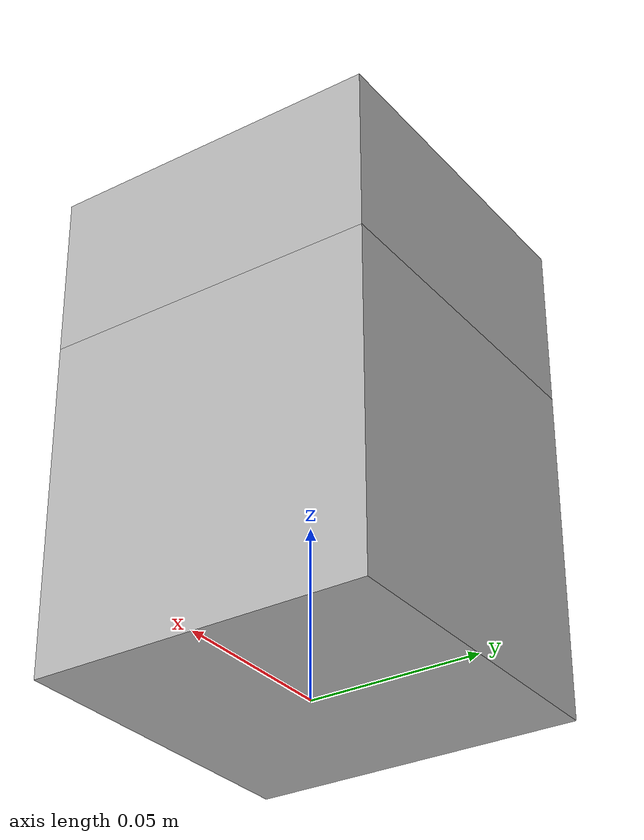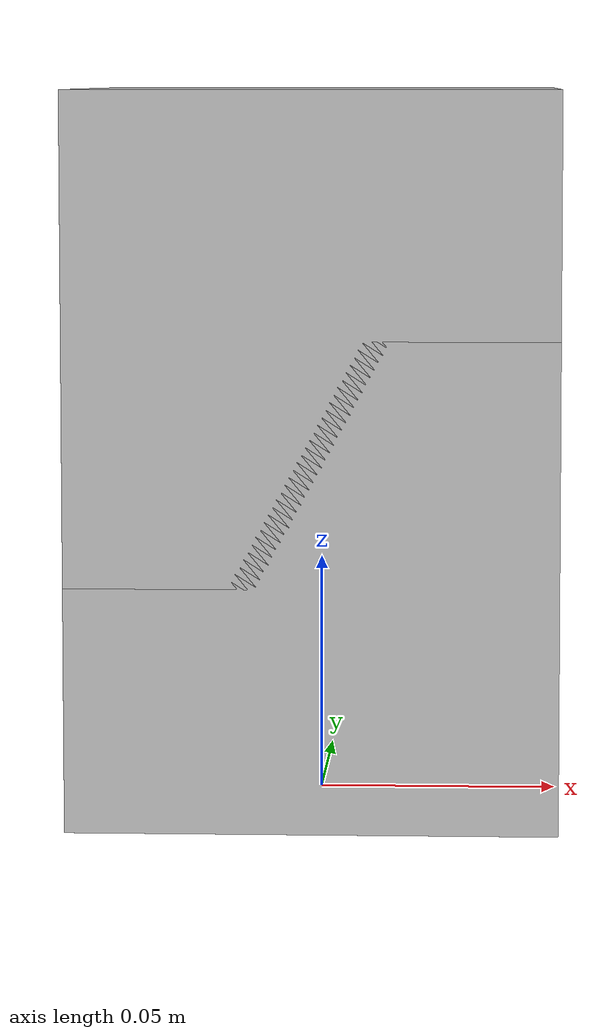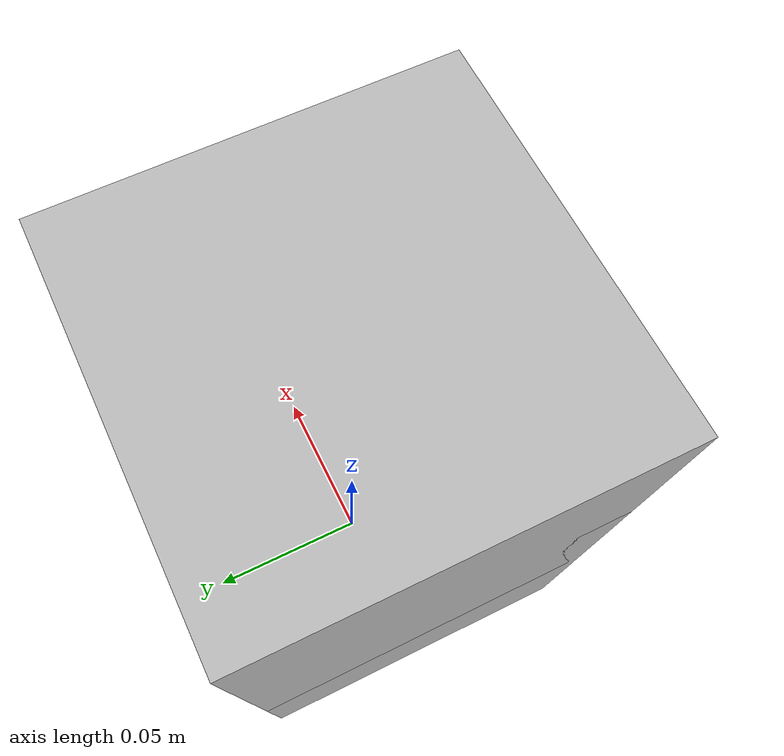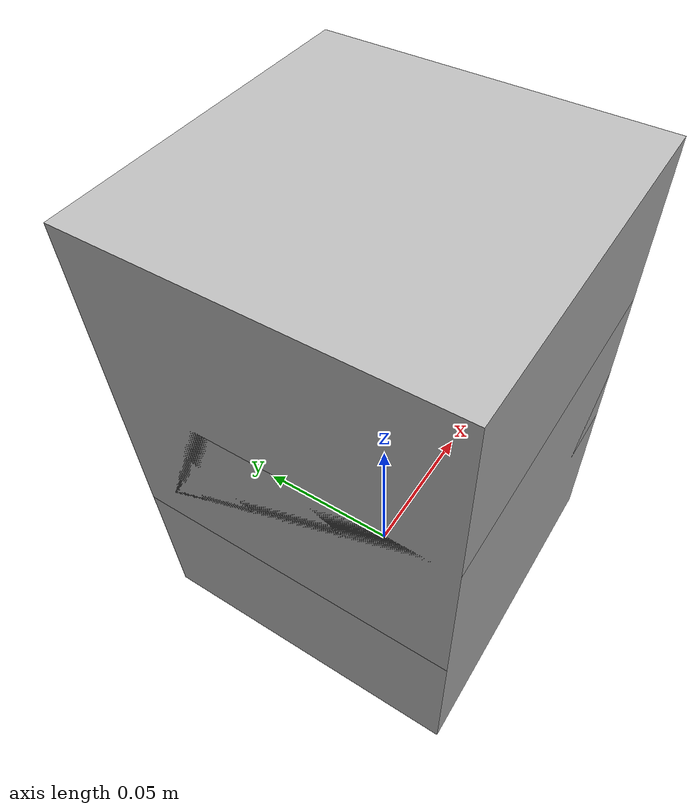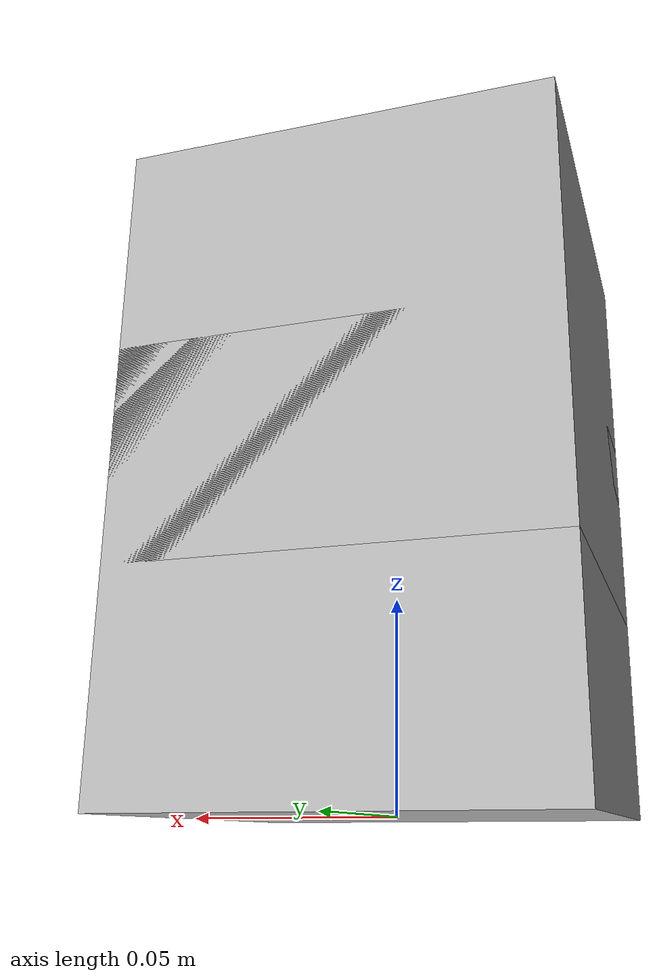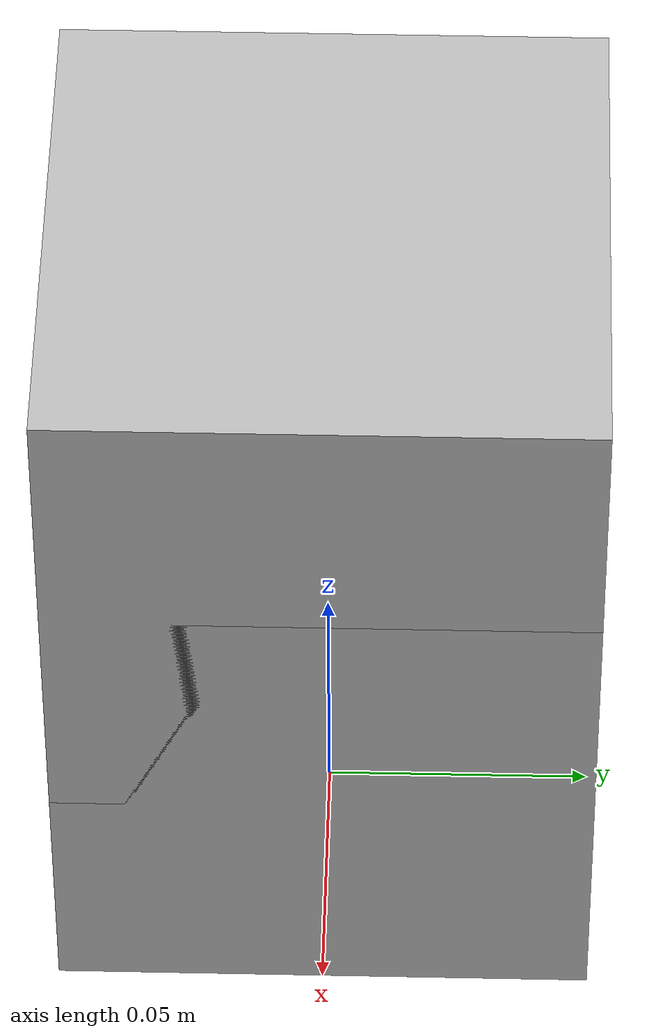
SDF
<?xml version='1.0'?>
<sdf version='1.6'>
		<model name="testflexible">
			<self_collide>true</self_collide>
			<pose>0.0 0.0 0.0 0.0 0.0 0.0</pose>
			<!-- Start of parts of the pmodel testflexible -->
				<!-- Start of declarations for part "testflexible::TESTLINK" -->
					<!-- Start of parts of part "testflexible::TESTLINK" -->
					<!-- End of parts of part "testflexible::TESTLINK" -->

					<!-- Start of links of part "testflexible::TESTLINK" -->
					<!-- link full name is testflexible::TESTLINK::L2 -->
					<link name="1-L2">
							<pose>0.0 0.0 0.10000000149011612 0.0 0.0 0.0</pose>
							<inertial>
								<pose>0.0 0.0 0.0 0.0 0.0 0.0</pose>
								<inertia>
									<ixx>1.0</ixx>
									<ixy>0.0</ixy>
									<ixz>0.0</ixz>
									<iyy>1.0</iyy>
									<iyz>0.0</iyz>
									<izz>1.0</izz>
								</inertia>
								<mass>1.0</mass>
							</inertial>
							<!-- body full name is testflexible::TESTLINK::L2::B2 -->
							<collision name="1--B2">
								<laser_retro>0.0</laser_retro>
								<pose>0.0 0.0 0.0 0.0 0.0 0.0</pose>
								<geometry>
									<box>
										<size>0.10000000149011612 0.10000000149011612 0.10000000149011612</size>
									</box>
								</geometry>
								<surface>
									<bounce>
										<restitution_coefficient>0.0</restitution_coefficient>
										<threshold>100000.0</threshold>
									</bounce>
									<friction>
										<ode>
											<mu>1.0</mu>
											<mu2>1.0</mu2>
											<fdir1>0.0 0.0 0.0</fdir1>
											<slip1>0.0</slip1>
											<slip2>0.0</slip2>
										</ode>
										<torsional>
											<coefficient>1.0</coefficient>
											<surface_radius>0.0</surface_radius>
										</torsional>
									</friction>
								</surface>
							</collision>
							<visual name="1--B2">
								<laser_retro>0.0</laser_retro>
								<pose>0.0 0.0 0.0 0.0 0.0 0.0</pose>
								<geometry>
									<box>
										<size>0.10000000149011612 0.10000000149011612 0.10000000149011612</size>
									</box>
								</geometry>
								<surface>
									<bounce>
										<restitution_coefficient>0.0</restitution_coefficient>
										<threshold>100000.0</threshold>
									</bounce>
									<friction>
										<ode>
											<mu>1.0</mu>
											<mu2>1.0</mu2>
											<fdir1>0.0 0.0 0.0</fdir1>
											<slip1>0.0</slip1>
											<slip2>0.0</slip2>
										</ode>
										<torsional>
											<coefficient>1.0</coefficient>
											<surface_radius>0.0</surface_radius>
										</torsional>
									</friction>
								</surface>
							</visual>
					</link>
					<!-- End of links of part "testflexible::TESTLINK" -->

					<!-- Start of joints of part "testflexible::TESTLINK" -->
					<!-- End of joints of part "testflexible::TESTLINK" -->

					<!-- Start of fixed connections of part "testflexible::TESTLINK" -->

					<!-- End of fixed connections of part "testflexible::TESTLINK" -->
				<!-- End of declarations for part "testflexible::TESTLINK" -->
			<!-- End of parts of the pmodel testflexible -->

			<!-- Start of links of the pmodel testflexible -->
			<!-- link full name is testflexible::L1 -->
			<link name="2-L1">
					<pose>0.0 0.0 0.05000000074505806 0.0 0.0 0.0</pose>
					<inertial>
						<pose>0.0 0.0 0.0 0.0 0.0 0.0</pose>
						<inertia>
							<ixx>1.0</ixx>
							<ixy>0.0</ixy>
							<ixz>0.0</ixz>
							<iyy>1.0</iyy>
							<iyz>0.0</iyz>
							<izz>1.0</izz>
						</inertia>
						<mass>1.0</mass>
					</inertial>
					<!-- body full name is testflexible::L1::B1 -->
					<collision name="2--B1">
						<laser_retro>0.0</laser_retro>
						<pose>0.0 0.0 0.0 0.0 0.0 0.0</pose>
						<geometry>
							<box>
								<size>0.10000000149011612 0.10000000149011612 0.10000000149011612</size>
							</box>
						</geometry>
						<surface>
							<bounce>
								<restitution_coefficient>0.0</restitution_coefficient>
								<threshold>100000.0</threshold>
							</bounce>
							<friction>
								<ode>
									<mu>1.0</mu>
									<mu2>1.0</mu2>
									<fdir1>0.0 0.0 0.0</fdir1>
									<slip1>0.0</slip1>
									<slip2>0.0</slip2>
								</ode>
								<torsional>
									<coefficient>1.0</coefficient>
									<surface_radius>0.0</surface_radius>
								</torsional>
							</friction>
						</surface>
					</collision>
					<visual name="2--B1">
						<laser_retro>0.0</laser_retro>
						<pose>0.0 0.0 0.0 0.0 0.0 0.0</pose>
						<geometry>
							<box>
								<size>0.10000000149011612 0.10000000149011612 0.10000000149011612</size>
							</box>
						</geometry>
						<surface>
							<bounce>
								<restitution_coefficient>0.0</restitution_coefficient>
								<threshold>100000.0</threshold>
							</bounce>
							<friction>
								<ode>
									<mu>1.0</mu>
									<mu2>1.0</mu2>
									<fdir1>0.0 0.0 0.0</fdir1>
									<slip1>0.0</slip1>
									<slip2>0.0</slip2>
								</ode>
								<torsional>
									<coefficient>1.0</coefficient>
									<surface_radius>0.0</surface_radius>
								</torsional>
							</friction>
						</surface>
					</visual>
			</link>
			<!-- End of links of the pmodel testflexible -->

			<!-- Start of joints of the pmodel testflexible -->
			<!-- Full name of joint: testflexible::L1::R from testflexible::L1 to testflexible::TESTLINK::L2-->
			<joint name="3-R" type="revolute">
				<pose>0.0 0.0 -0.05000000074505806 0.0 -0.0 0.0</pose>
				<parent>2-L1</parent>
				<child>1-L2</child>
			</joint>
			<!-- End of joints of the pmodel testflexible -->

			<!-- Start of fixed connections of the pmodel testflexible -->
			<!-- End of fixed connections of the pmodel testflexible -->
		</model>
</sdf>
